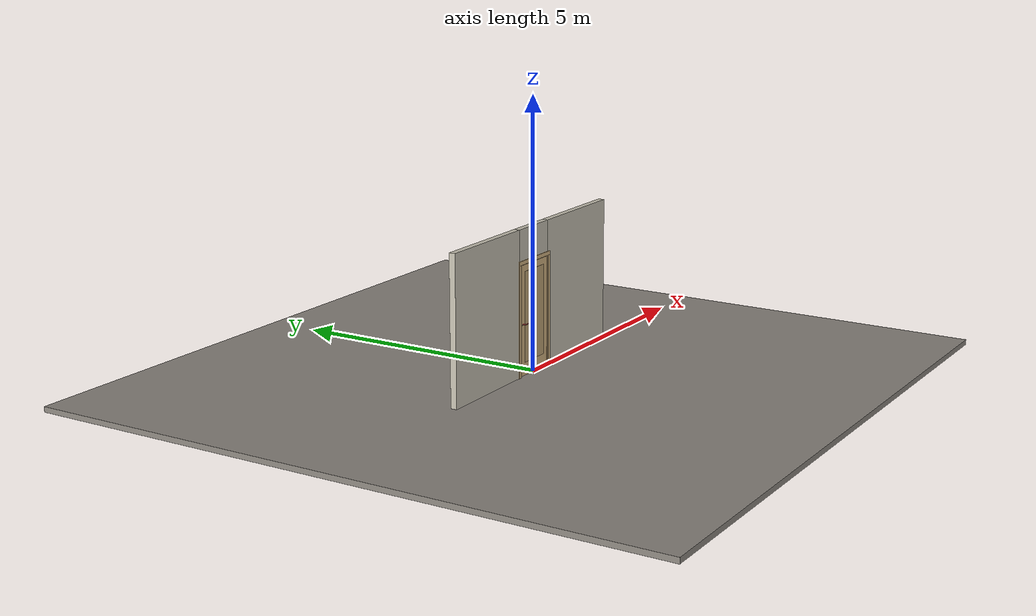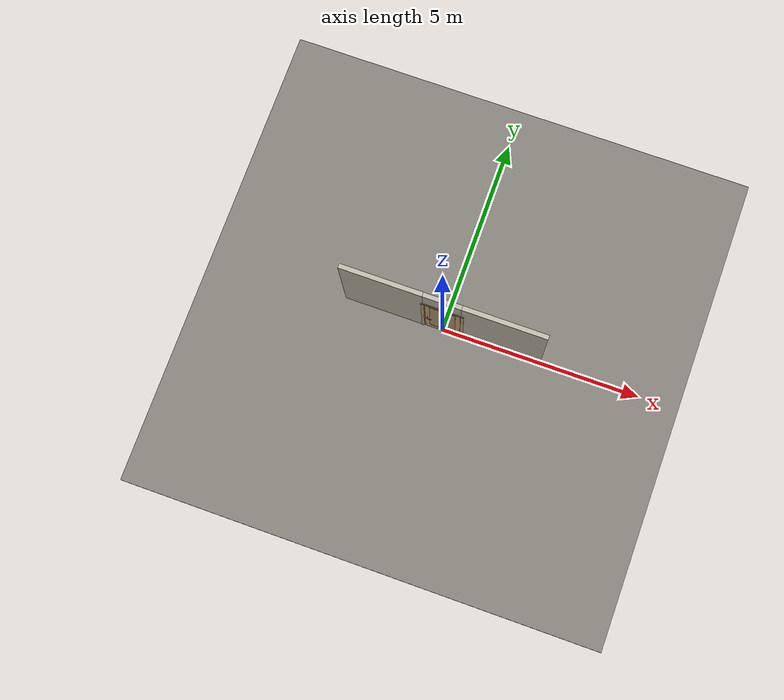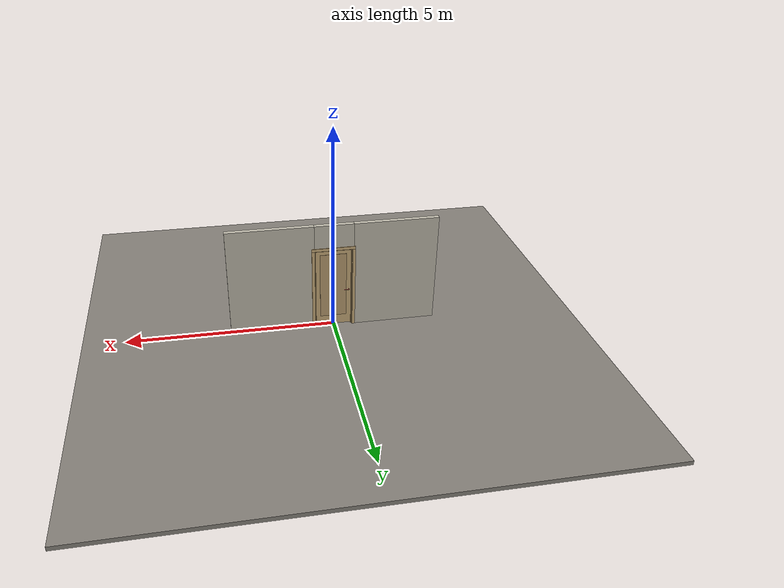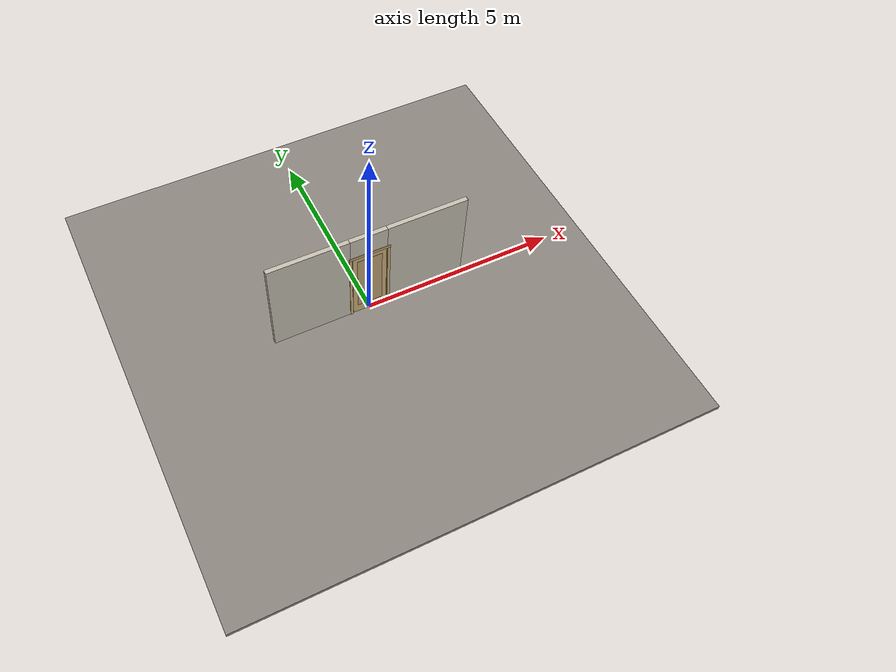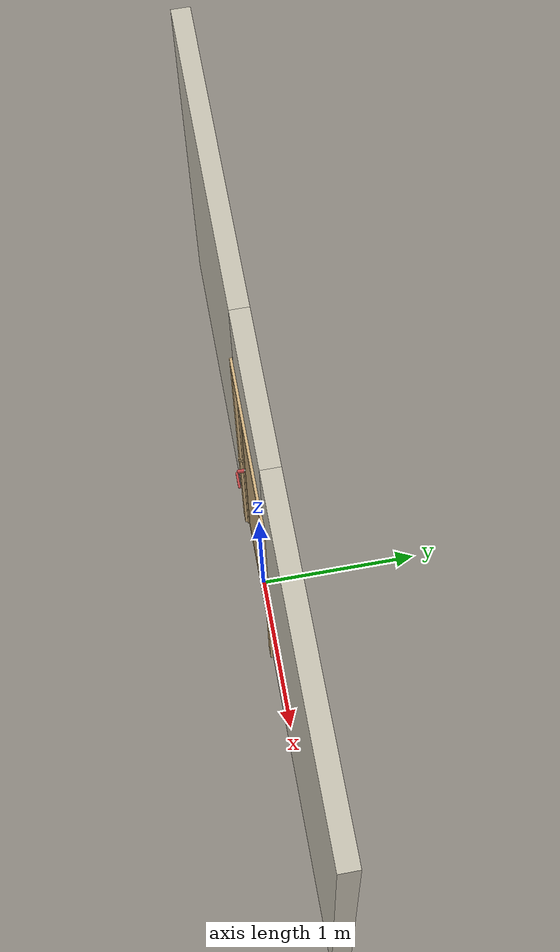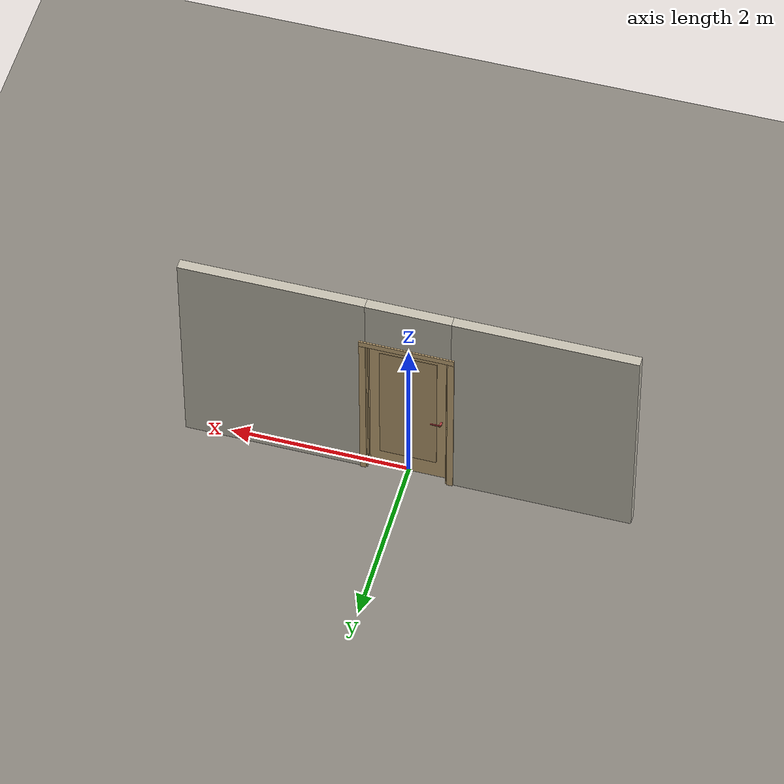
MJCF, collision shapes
<?xml version="1.0" ?>
<mujoco model="db0490_swing_single_full">
  <compiler angle="radian" meshdir="../../hardware" texturedir="../../textures" autolimits="true" inertiafromgeom="false"/>
  <option timestep="0.002" integrator="implicitfast" cone="elliptic" impratio="10" noslip_iterations="3">
    <flag multiccd="enable"/>
  </option>
  <size memory="16M"/>
  <default>
    <geom condim="4" solref="0.005 1" solimp="0.95 0.99 0.001"/>
    <joint solreflimit="0.005 1" solimplimit="0.95 0.99 0.001"/>
    <tendon solreflimit="0.005 1"/>
    <equality solref="0.002 1"/>
  </default>
  <visual>
    <headlight ambient="0.4 0.4 0.4" diffuse="0.7 0.7 0.7" specular="0.2 0.2 0.2"/>
    <quality shadowsize="4096"/>
    <map znear="0.01" zfar="60"/>
  </visual>
  <asset>
    <mesh name="hinge_e22b26c0c1" file="hinge_e22b26c0c1.obj"/>
    <mesh name="hinge_jamb_e1d088f8dc" file="hinge_jamb_e1d088f8dc.obj"/>
    <mesh name="lever_748f08efca" file="lever_748f08efca.obj"/>
    <material name="mat_floor" rgba="0.55 0.53 0.5 1" specular="0.2" shininess="0.15" reflectance="0"/>
    <material name="mat_wall" rgba="0.78 0.76 0.7 1" specular="0.2" shininess="0.1" reflectance="0"/>
    <material name="mat_leaf" rgba="0.82 0.7 0.5 1" specular="0.2" shininess="0.45" reflectance="0"/>
    <material name="mat_leaf_panel" rgba="0.754 0.644 0.46 1" specular="0.2" shininess="0.45" reflectance="0"/>
    <material name="mat_hinge" rgba="0.65 0.66 0.68 1" specular="0.74" shininess="0.5" reflectance="0.36"/>
    <material name="mat_op_chrome" rgba="0.9 0.9 0.92 1" specular="0.8" shininess="0.9" reflectance="0.4"/>
    <material name="mat_trim" rgba="0.85 0.66 0.3 1" specular="0.8" shininess="0.75" reflectance="0.4"/>
    <material name="mat_bolt" rgba="0.85 0.66 0.3 1" specular="0.8" shininess="0.75" reflectance="0.4"/>
    <material name="mat_frame" rgba="0.82 0.7 0.5 1" specular="0.2" shininess="0.45" reflectance="0"/>
    <material name="mat_seal" rgba="0.1 0.1 0.1 1" specular="0.2" shininess="0.1" reflectance="0"/>
    <texture name="skybox" type="skybox" builtin="gradient" rgb1="0.6 0.7 0.85" rgb2="0.9 0.92 0.95" width="256" height="256"/>
  </asset>
  <worldbody>
    <light name="sun" pos="1.5 -2.5 4" dir="-0.3 0.5 -0.8" directional="true" diffuse="0.8 0.8 0.8" specular="0.3 0.3 0.3" castshadow="true"/>
    <light name="fill" pos="-1.5 2.5 3" dir="0.3 -0.5 -0.7" directional="true" diffuse="0.35 0.35 0.4" castshadow="false"/>
    <camera name="robot_view" pos="0 -2.513687 1.734312" xyaxes="1 0 0 0 0.26963 0.962964" fovy="52"/>
    <camera name="far_view" pos="0 2.570688 1.734312" xyaxes="-1 0 0 0 -0.26963 0.962964" fovy="52"/>
    <camera name="iso" pos="-1.932062 -2.106937 2.141063" xyaxes="0.741536 -0.670913 0 0.242917 0.268487 0.932151" fovy="46"/>
    <camera name="detail_handle" pos="-0.1014 -0.877 1.245" xyaxes="0.97561 0.219512 0 -0.070934 0.315262 0.94635" fovy="38"/>
    <geom name="floor" type="box" size="6 6 0.05" pos="0 0 -0.05" material="mat_floor" group="0" contype="1" conaffinity="1" friction="0.8 0.005 0.0001" density="2400"/>
    <geom name="wall_left" type="box" size="1.0075 0.0575 1.35" pos="-1.4925 0.0285 1.35" material="mat_wall" group="0" contype="1" conaffinity="1" friction="0.6 0.005 0.0001" density="800"/>
    <geom name="wall_right" type="box" size="1.0225 0.0575 1.35" pos="1.4775 0.0285 1.35" material="mat_wall" group="0" contype="1" conaffinity="1" friction="0.6 0.005 0.0001" density="800"/>
    <geom name="wall_header" type="box" size="0.47 0.0575 0.303" pos="-0.015 0.0285 2.397" material="mat_wall" group="0" contype="1" conaffinity="1" friction="0.6 0.005 0.0001" density="800"/>
    <geom name="hinge_0_jamb" type="mesh" mesh="hinge_jamb_e1d088f8dc" pos="0.433 -0.029 0.259" quat="0 0 1 0" material="mat_hinge" group="1" contype="0" conaffinity="0" density="7850"/>
    <geom name="hinge_1_jamb" type="mesh" mesh="hinge_jamb_e1d088f8dc" pos="0.433 -0.029 1.025" quat="0 0 1 0" material="mat_hinge" group="1" contype="0" conaffinity="0" density="7850"/>
    <geom name="hinge_2_jamb" type="mesh" mesh="hinge_jamb_e1d088f8dc" pos="0.433 -0.029 1.861" quat="0 0 1 0" material="mat_hinge" group="1" contype="0" conaffinity="0" density="7850"/>
    <geom name="jamb_hinge" type="box" size="0.0095 0.0575 1.0225" pos="0.4455 0.0285 1.0225" material="mat_frame" group="0" contype="1" conaffinity="1" friction="0.6 0.005 0.0001" density="400"/>
    <geom name="strike_965_wall_n" type="box" size="0.0245 0.039075 0.0167" pos="-0.4605 0.046925 0.965" material="mat_frame" group="0" contype="1" conaffinity="1" friction="0.6 0.005 0.0001" density="400"/>
    <geom name="strike_965_wall_p" type="box" size="0.0245 0.008 0.0167" pos="-0.4605 -0.01585 0.965" material="mat_frame" group="0" contype="1" conaffinity="1" friction="0.6 0.005 0.0001" density="400"/>
    <geom name="strike_965_ramp" type="box" size="0.0245 0.01649 0.0167" pos="-0.465136 -0.028673 0.965" quat="0.977148 0 0 -0.212558" material="mat_frame" group="0" contype="1" conaffinity="1" friction="0.12 0.005 0.0001" density="400"/>
    <geom name="strike_965_back" type="box" size="0.01615 0.00785 0.0167" pos="-0.46885 0 0.965" material="mat_frame" group="0" contype="1" conaffinity="1" friction="0.6 0.005 0.0001" density="400"/>
    <geom name="jamb_strike_0" type="box" size="0.0245 0.0575 0.47415" pos="-0.4605 0.0285 0.47415" material="mat_frame" group="0" contype="1" conaffinity="1" friction="0.6 0.005 0.0001" density="400"/>
    <geom name="jamb_strike_1" type="box" size="0.0245 0.0575 0.53165" pos="-0.4605 0.0285 1.51335" material="mat_frame" group="0" contype="1" conaffinity="1" friction="0.6 0.005 0.0001" density="400"/>
    <geom name="jamb_head" type="box" size="0.47 0.0575 0.0095" pos="-0.015 0.0285 2.0545" material="mat_frame" group="0" contype="1" conaffinity="1" friction="0.6 0.005 0.0001" density="400"/>
    <geom name="head_stud" type="box" size="0.47 0.0575 0.015" pos="-0.015 0.0285 2.079" material="mat_wall" group="0" contype="1" conaffinity="1" friction="0.6 0.005 0.0001" density="500"/>
    <geom name="stop_hinge" type="box" size="0.0055 0.016 1.0225" pos="0.4305 0.0385 1.0225" material="mat_frame" group="0" contype="1" conaffinity="1" friction="0.6 0.005 0.0001" density="400"/>
    <geom name="stop_strike" type="box" size="0.0055 0.016 1.0225" pos="-0.4305 0.0385 1.0225" material="mat_frame" group="0" contype="1" conaffinity="1" friction="0.6 0.005 0.0001" density="400"/>
    <geom name="stop_head" type="box" size="0.436 0.016 0.0055" pos="0 0.0385 2.0395" material="mat_frame" group="0" contype="1" conaffinity="1" friction="0.6 0.005 0.0001" density="400"/>
    <geom name="seal_hinge" type="box" size="0.004 0.0015 1.0225" pos="0.433 0.0235 1.0225" material="mat_seal" group="1" contype="0" conaffinity="0" density="1100"/>
    <geom name="seal_strike" type="box" size="0.004 0.0015 1.0225" pos="-0.433 0.0235 1.0225" material="mat_seal" group="1" contype="0" conaffinity="0" density="1100"/>
    <geom name="seal_head" type="box" size="0.416 0.0015 0.008" pos="0 0.0235 2.033" material="mat_seal" group="1" contype="0" conaffinity="0" density="1100"/>
    <geom name="casing_l_n" type="box" size="0.035 0.008 1.032" pos="-0.485 -0.037 1.0225" material="mat_frame" group="2" contype="0" conaffinity="0" density="400"/>
    <geom name="casing_r_n" type="box" size="0.035 0.008 1.032" pos="0.485 -0.037 1.0225" material="mat_frame" group="2" contype="0" conaffinity="0" density="400"/>
    <geom name="casing_h_n" type="box" size="0.52 0.008 0.035" pos="0 -0.037 2.094" material="mat_frame" group="2" contype="0" conaffinity="0" density="400"/>
    <geom name="casing_l_p" type="box" size="0.035 0.008 1.032" pos="-0.485 0.094 1.0225" material="mat_frame" group="2" contype="0" conaffinity="0" density="400"/>
    <geom name="casing_r_p" type="box" size="0.035 0.008 1.032" pos="0.485 0.094 1.0225" material="mat_frame" group="2" contype="0" conaffinity="0" density="400"/>
    <geom name="casing_h_p" type="box" size="0.52 0.008 0.035" pos="0 0.094 2.094" material="mat_frame" group="2" contype="0" conaffinity="0" density="400"/>
    <site name="approach_point" pos="0 -1.5 0" quat="1 0 0 0" size="0.05" rgba="0.2 0.9 0.2 0.5" group="4"/>
    <site name="goal_point" pos="0 1.5 0" quat="1 0 0 0" size="0.05" rgba="0.2 0.9 0.2 0.5" group="4"/>
    <site name="door_plane_center" pos="0 0 1.0225" quat="1 0 0 0" size="0.02" rgba="0.2 0.9 0.2 0.5" group="4"/>
    <body name="leaf" pos="0.436 0 0">
      <inertial pos="-0.425308 -0.000409 1.025532" mass="31.652158" quat="0.500462 -0.499116 0.50087 0.49955" diaginertia="2.063023144 10.952226362 13.004491523"/>
      <joint name="leaf_hinge" type="hinge" axis="0 0 1" pos="-0.003 -0.029 0" limited="true" range="0 2.268928" solreflimit="0.02 1" damping="0.254501" frictionloss="4.480171" armature="0.02"/>
      <geom name="leaf_slab" type="box" size="0.432 0.022 1.016" pos="-0.435 0 1.025" material="mat_leaf" group="0" contype="1" conaffinity="1" friction="0.35 0.005 0.0001" density="1"/>
      <geom name="leaf_panel_0_n" type="box" size="0.31696 0.003 0.83344" pos="-0.435 -0.025 1.08596" material="mat_leaf_panel" group="1" contype="0" conaffinity="0" density="1"/>
      <geom name="leaf_panel_0_p" type="box" size="0.31696 0.003 0.83344" pos="-0.435 0.025 1.08596" material="mat_leaf_panel" group="1" contype="0" conaffinity="0" density="1"/>
      <geom name="hinge_0" type="mesh" mesh="hinge_e22b26c0c1" pos="-0.003 -0.029 0.259" quat="0 0 1 0" material="mat_hinge" group="1" contype="0" conaffinity="0" density="7850"/>
      <geom name="hinge_1" type="mesh" mesh="hinge_e22b26c0c1" pos="-0.003 -0.029 1.025" quat="0 0 1 0" material="mat_hinge" group="1" contype="0" conaffinity="0" density="7850"/>
      <geom name="hinge_2" type="mesh" mesh="hinge_e22b26c0c1" pos="-0.003 -0.029 1.861" quat="0 0 1 0" material="mat_hinge" group="1" contype="0" conaffinity="0" density="7850"/>
      <geom name="leaf_latch_bolt_faceplate" type="box" size="0.0006 0.01235 0.0267" pos="-0.8664 0 0.965" material="mat_bolt" group="1" contype="0" conaffinity="0" density="8500"/>
      <site name="leaf_edge_mid" pos="-0.867 0 1.016" quat="1 0 0 0" size="0.02" rgba="0.2 0.9 0.2 0.5" group="4"/>
      <body name="leaf_handle" pos="-0.807 0 0.965">
        <inertial pos="0.02396 0.000807 0" mass="0.855828" quat="0.709901 0 0 -0.704301" diaginertia="0.001191997 0.003281169 0.004336192"/>
        <joint name="leaf_handle_hinge" type="hinge" axis="0 1 0" limited="true" range="0 0.1" damping="0.205086" frictionloss="0.04" stiffness="0.9" springref="-0.444444" armature="0.01"/>
        <geom name="leaf_handle_spindle" type="cylinder" size="0.006 0.03" pos="0 0 0" quat="0.707107 -0.707107 0 0" material="mat_op_chrome" group="1" contype="0" conaffinity="0" density="7850"/>
        <geom name="leaf_handle_lever_n" type="mesh" mesh="lever_748f08efca" pos="0 -0.022 0" quat="0 0 -0.707107 0.707107" material="mat_op_chrome" group="1" contype="0" conaffinity="0" density="3000"/>
        <geom name="leaf_handle_lever_col_n" type="capsule" size="0.008 0.048" pos="0.056 -0.077 0" quat="0.707107 0 0.707107 0" material="mat_op_chrome" group="3" contype="1" conaffinity="1" rgba="0.8 0.3 0.3 0.25" friction="0.7 0.01 0.0001" density="3000"/>
        <geom name="leaf_handle_hub_col_n" type="cylinder" size="0.012 0.022" pos="0 -0.052 0" quat="0.707107 -0.707107 0 0" material="mat_op_chrome" group="3" contype="1" conaffinity="1" rgba="0.8 0.3 0.3 0.25" friction="0.6 0.005 0.0001" density="3000"/>
        <geom name="leaf_handle_lever_p" type="mesh" mesh="lever_748f08efca" pos="0 0.022 0" quat="0 0 0.707107 0.707107" material="mat_op_chrome" group="1" contype="0" conaffinity="0" density="3000"/>
        <geom name="leaf_handle_lever_col_p" type="capsule" size="0.008 0.048" pos="0.056 0.077 0" quat="0.707107 0 0.707107 0" material="mat_op_chrome" group="3" contype="1" conaffinity="1" rgba="0.8 0.3 0.3 0.25" friction="0.7 0.01 0.0001" density="3000"/>
        <geom name="leaf_handle_hub_col_p" type="cylinder" size="0.012 0.022" pos="0 0.052 0" quat="0.707107 -0.707107 0 0" material="mat_op_chrome" group="3" contype="1" conaffinity="1" rgba="0.8 0.3 0.3 0.25" friction="0.6 0.005 0.0001" density="3000"/>
        <geom name="leaf_handle_turn_button_p" type="cylinder" size="0.006 0.005" pos="0 0.086 0" quat="0.707107 -0.707107 0 0" material="mat_trim" group="1" contype="0" conaffinity="0" density="7100"/>
        <site name="leaf_handle_grip_n" pos="0.0896 -0.077 0" quat="1 0 0 0" size="0.012" rgba="0.2 0.9 0.2 0.5" group="4"/>
        <site name="leaf_handle_grip_p" pos="0.0896 0.077 0" quat="1 0 0 0" size="0.012" rgba="0.2 0.9 0.2 0.5" group="4"/>
      </body>
      <body name="leaf_latch_bolt" pos="-0.867 0 0.965">
        <inertial pos="0.00865 0 0" mass="0.041419" quat="0.92388 0.382683 0 0" diaginertia="0.000000798 0.000005598 0.000005598"/>
        <joint name="leaf_latch_bolt_slide" type="slide" axis="1 0 0" limited="true" range="0 0.0127" damping="2" frictionloss="0.3" stiffness="300" springref="-0.008333" armature="0.1"/>
        <geom name="leaf_latch_bolt_capsule" type="capsule" size="0.00635 0.015" pos="0.00865 0 0" quat="0.707107 0 -0.707107 0" material="mat_bolt" group="0" contype="1" conaffinity="1" friction="0.2 0.005 0.0001" density="8500"/>
      </body>
    </body>
  </worldbody>
  <tendon>
    <fixed name="leaf_latch_bolt_coupling" limited="true" range="0 10">
      <joint joint="leaf_latch_bolt_slide" coef="1"/>
      <joint joint="leaf_handle_hinge" coef="-0.016076"/>
    </fixed>
  </tendon>
  <sensor>
    <jointpos name="leaf_hinge_pos" joint="leaf_hinge"/>
    <jointvel name="leaf_hinge_vel" joint="leaf_hinge"/>
    <jointpos name="leaf_handle_hinge_pos" joint="leaf_handle_hinge"/>
    <jointvel name="leaf_handle_hinge_vel" joint="leaf_handle_hinge"/>
    <jointpos name="leaf_latch_bolt_slide_pos" joint="leaf_latch_bolt_slide"/>
    <jointvel name="leaf_latch_bolt_slide_vel" joint="leaf_latch_bolt_slide"/>
  </sensor>
</mujoco>
